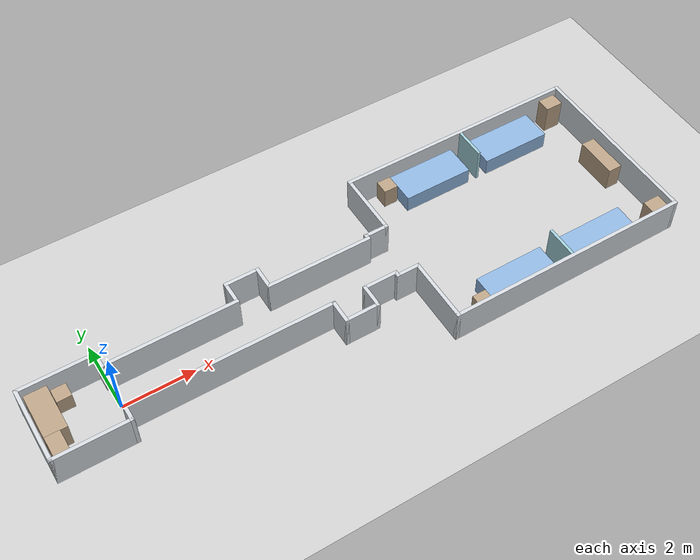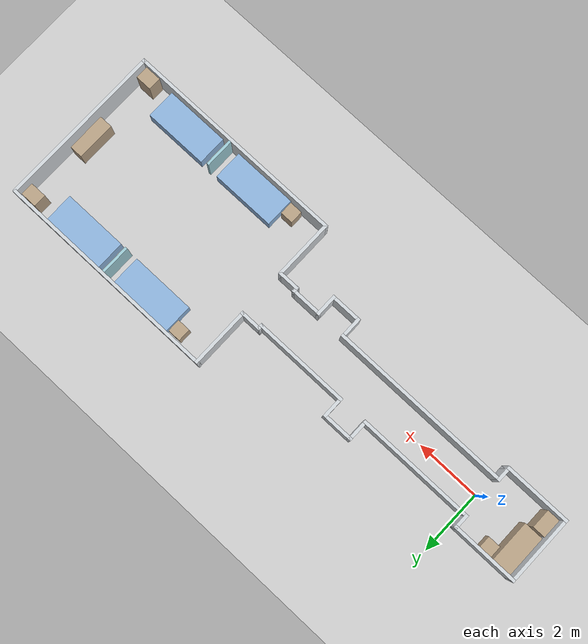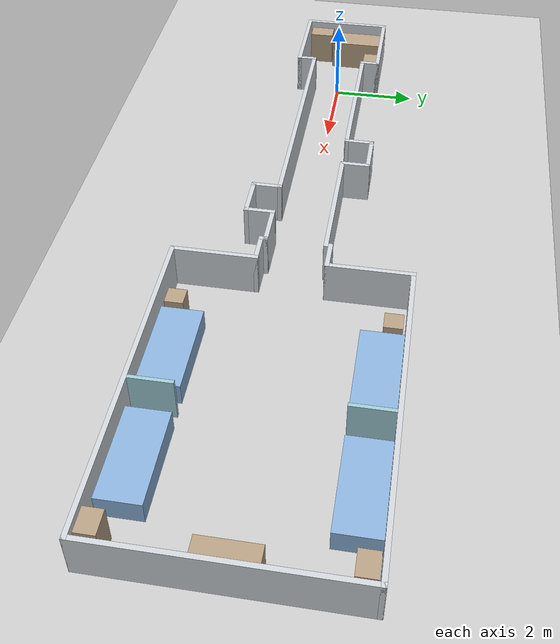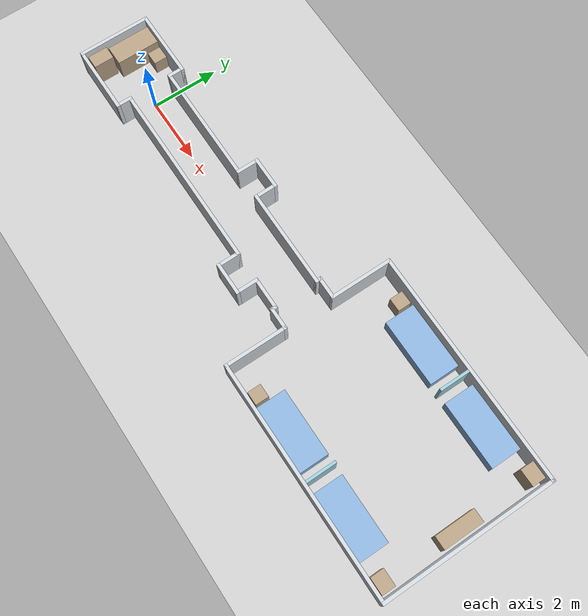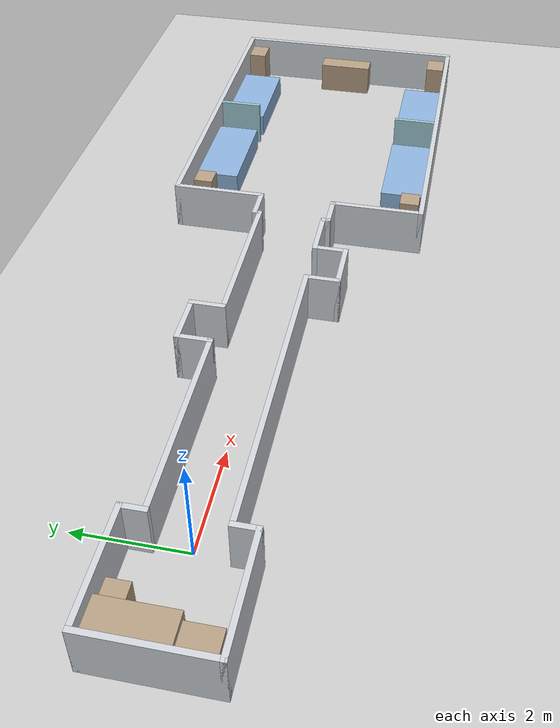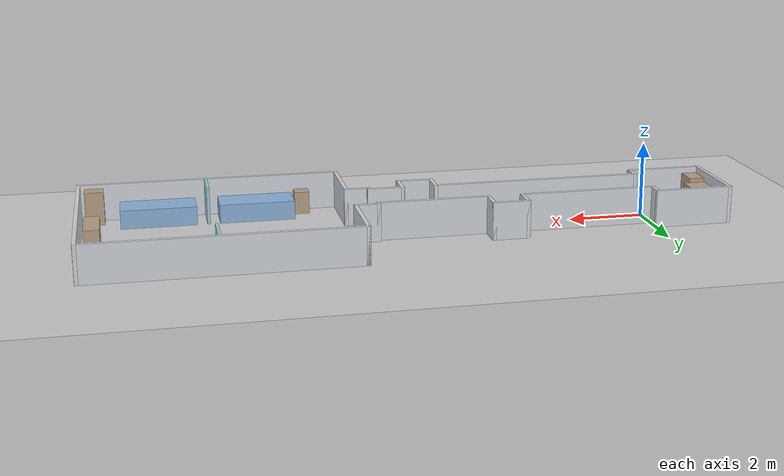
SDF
<?xml version="1.0" ?>
<sdf version="1.6">
  <world name="hospital_4bed">

    <include><uri>model://ground_plane</uri></include>
    <include><uri>model://sun</uri></include>

    <!-- VM(llvmpipe) 렌더 부하 절감: 그림자 off -->
    <scene>
      <ambient>0.55 0.55 0.55 1</ambient>
      <background>0.85 0.88 0.92 1</background>
      <shadows>false</shadows>
      <grid>false</grid>
    </scene>

    <physics type="ode">
      <max_step_size>0.002</max_step_size>
      <real_time_update_rate>500</real_time_update_rate>
    </physics>

    <!-- 영상 촬영용 기본 카메라: 복도 서측에서 병실 방향 부감 -->
    <gui fullscreen="0">
      <camera name="user_camera">
        <pose>-2.5 -6.0 6.5 0 0.62 0.95</pose>
      </camera>
    </gui>

    <!-- ==================== 간호 스테이션 (2.0 x 2.0) — 로봇 시작/복귀 지점 ==================== -->
    <model name="ns_wall_west">
      <static>true</static>
      <pose>-2.0500 0.0000 0.5000 0 0 0</pose>
      <link name="link">
        <collision name="collision">
          <geometry><box><size>0.1000 2.2000 1.0000</size></box></geometry>
        </collision>
        <visual name="visual">
          <geometry><box><size>0.1000 2.2000 1.0000</size></box></geometry>
          <material>
            <ambient>0.60 0.62 0.64 1</ambient>
            <diffuse>0.82 0.84 0.86 1</diffuse>
            <specular>0.05 0.05 0.05 1</specular>
          </material>
        </visual>
      </link>
    </model>
    <model name="ns_wall_north">
      <static>true</static>
      <pose>-1.0500 1.0500 0.5000 0 0 0</pose>
      <link name="link">
        <collision name="collision">
          <geometry><box><size>2.1000 0.1000 1.0000</size></box></geometry>
        </collision>
        <visual name="visual">
          <geometry><box><size>2.1000 0.1000 1.0000</size></box></geometry>
          <material>
            <ambient>0.60 0.62 0.64 1</ambient>
            <diffuse>0.82 0.84 0.86 1</diffuse>
            <specular>0.05 0.05 0.05 1</specular>
          </material>
        </visual>
      </link>
    </model>
    <model name="ns_wall_south">
      <static>true</static>
      <pose>-1.0500 -1.0500 0.5000 0 0 0</pose>
      <link name="link">
        <collision name="collision">
          <geometry><box><size>2.1000 0.1000 1.0000</size></box></geometry>
        </collision>
        <visual name="visual">
          <geometry><box><size>2.1000 0.1000 1.0000</size></box></geometry>
          <material>
            <ambient>0.60 0.62 0.64 1</ambient>
            <diffuse>0.82 0.84 0.86 1</diffuse>
            <specular>0.05 0.05 0.05 1</specular>
          </material>
        </visual>
      </link>
    </model>
    <model name="ns_neck_north">
      <static>true</static>
      <pose>-0.0500 0.8500 0.5000 0 0 0</pose>
      <link name="link">
        <collision name="collision">
          <geometry><box><size>0.1000 0.5000 1.0000</size></box></geometry>
        </collision>
        <visual name="visual">
          <geometry><box><size>0.1000 0.5000 1.0000</size></box></geometry>
          <material>
            <ambient>0.60 0.62 0.64 1</ambient>
            <diffuse>0.82 0.84 0.86 1</diffuse>
            <specular>0.05 0.05 0.05 1</specular>
          </material>
        </visual>
      </link>
    </model>
    <model name="ns_neck_south">
      <static>true</static>
      <pose>-0.0500 -0.8500 0.5000 0 0 0</pose>
      <link name="link">
        <collision name="collision">
          <geometry><box><size>0.1000 0.5000 1.0000</size></box></geometry>
        </collision>
        <visual name="visual">
          <geometry><box><size>0.1000 0.5000 1.0000</size></box></geometry>
          <material>
            <ambient>0.60 0.62 0.64 1</ambient>
            <diffuse>0.82 0.84 0.86 1</diffuse>
            <specular>0.05 0.05 0.05 1</specular>
          </material>
        </visual>
      </link>
    </model>
    <model name="ns_desk">
      <static>true</static>
      <pose>-1.6500 0.3500 0.3750 0 0 0</pose>
      <link name="link">
        <collision name="collision">
          <geometry><box><size>0.6000 1.3000 0.7500</size></box></geometry>
        </collision>
        <visual name="visual">
          <geometry><box><size>0.6000 1.3000 0.7500</size></box></geometry>
          <material>
            <ambient>0.45 0.38 0.30 1</ambient>
            <diffuse>0.72 0.63 0.52 1</diffuse>
            <specular>0.05 0.05 0.05 1</specular>
          </material>
        </visual>
      </link>
    </model>
    <model name="ns_chair">
      <static>true</static>
      <pose>-1.1200 0.8000 0.2500 0 0 0</pose>
      <link name="link">
        <collision name="collision">
          <geometry><box><size>0.4000 0.4000 0.5000</size></box></geometry>
        </collision>
        <visual name="visual">
          <geometry><box><size>0.4000 0.4000 0.5000</size></box></geometry>
          <material>
            <ambient>0.45 0.38 0.30 1</ambient>
            <diffuse>0.72 0.63 0.52 1</diffuse>
            <specular>0.05 0.05 0.05 1</specular>
          </material>
        </visual>
      </link>
    </model>
    <model name="ns_cabinet">
      <static>true</static>
      <pose>-1.7500 -0.6500 0.4250 0 0 0</pose>
      <link name="link">
        <collision name="collision">
          <geometry><box><size>0.4000 0.6000 0.8500</size></box></geometry>
        </collision>
        <visual name="visual">
          <geometry><box><size>0.4000 0.6000 0.8500</size></box></geometry>
          <material>
            <ambient>0.45 0.38 0.30 1</ambient>
            <diffuse>0.72 0.63 0.52 1</diffuse>
            <specular>0.05 0.05 0.05 1</specular>
          </material>
        </visual>
      </link>
    </model>
    <!-- ==================== 복도 (8.0 x 1.2) + 벽면 알코브(SLAM 특징점) + 문앞 확장 ==================== -->
    <model name="cr_wall_n_1">
      <static>true</static>
      <pose>1.8000 0.6500 0.5000 0 0 0</pose>
      <link name="link">
        <collision name="collision">
          <geometry><box><size>3.6000 0.1000 1.0000</size></box></geometry>
        </collision>
        <visual name="visual">
          <geometry><box><size>3.6000 0.1000 1.0000</size></box></geometry>
          <material>
            <ambient>0.60 0.62 0.64 1</ambient>
            <diffuse>0.82 0.84 0.86 1</diffuse>
            <specular>0.05 0.05 0.05 1</specular>
          </material>
        </visual>
      </link>
    </model>
    <model name="cr_wall_n_2">
      <static>true</static>
      <pose>5.9000 0.6500 0.5000 0 0 0</pose>
      <link name="link">
        <collision name="collision">
          <geometry><box><size>3.0000 0.1000 1.0000</size></box></geometry>
        </collision>
        <visual name="visual">
          <geometry><box><size>3.0000 0.1000 1.0000</size></box></geometry>
          <material>
            <ambient>0.60 0.62 0.64 1</ambient>
            <diffuse>0.82 0.84 0.86 1</diffuse>
            <specular>0.05 0.05 0.05 1</specular>
          </material>
        </visual>
      </link>
    </model>
    <model name="alcove_n_back">
      <static>true</static>
      <pose>4.0000 1.2500 0.5000 0 0 0</pose>
      <link name="link">
        <collision name="collision">
          <geometry><box><size>1.0000 0.1000 1.0000</size></box></geometry>
        </collision>
        <visual name="visual">
          <geometry><box><size>1.0000 0.1000 1.0000</size></box></geometry>
          <material>
            <ambient>0.60 0.62 0.64 1</ambient>
            <diffuse>0.82 0.84 0.86 1</diffuse>
            <specular>0.05 0.05 0.05 1</specular>
          </material>
        </visual>
      </link>
    </model>
    <model name="alcove_n_side_w">
      <static>true</static>
      <pose>3.5500 0.9500 0.5000 0 0 0</pose>
      <link name="link">
        <collision name="collision">
          <geometry><box><size>0.1000 0.7000 1.0000</size></box></geometry>
        </collision>
        <visual name="visual">
          <geometry><box><size>0.1000 0.7000 1.0000</size></box></geometry>
          <material>
            <ambient>0.60 0.62 0.64 1</ambient>
            <diffuse>0.82 0.84 0.86 1</diffuse>
            <specular>0.05 0.05 0.05 1</specular>
          </material>
        </visual>
      </link>
    </model>
    <model name="alcove_n_side_e">
      <static>true</static>
      <pose>4.4500 0.9500 0.5000 0 0 0</pose>
      <link name="link">
        <collision name="collision">
          <geometry><box><size>0.1000 0.7000 1.0000</size></box></geometry>
        </collision>
        <visual name="visual">
          <geometry><box><size>0.1000 0.7000 1.0000</size></box></geometry>
          <material>
            <ambient>0.60 0.62 0.64 1</ambient>
            <diffuse>0.82 0.84 0.86 1</diffuse>
            <specular>0.05 0.05 0.05 1</specular>
          </material>
        </visual>
      </link>
    </model>
    <model name="cr_step_n">
      <static>true</static>
      <pose>7.3500 0.7000 0.5000 0 0 0</pose>
      <link name="link">
        <collision name="collision">
          <geometry><box><size>0.1000 0.2000 1.0000</size></box></geometry>
        </collision>
        <visual name="visual">
          <geometry><box><size>0.1000 0.2000 1.0000</size></box></geometry>
          <material>
            <ambient>0.60 0.62 0.64 1</ambient>
            <diffuse>0.82 0.84 0.86 1</diffuse>
            <specular>0.05 0.05 0.05 1</specular>
          </material>
        </visual>
      </link>
    </model>
    <model name="cr_wall_n_3">
      <static>true</static>
      <pose>7.6500 0.7500 0.5000 0 0 0</pose>
      <link name="link">
        <collision name="collision">
          <geometry><box><size>0.7000 0.1000 1.0000</size></box></geometry>
        </collision>
        <visual name="visual">
          <geometry><box><size>0.7000 0.1000 1.0000</size></box></geometry>
          <material>
            <ambient>0.60 0.62 0.64 1</ambient>
            <diffuse>0.82 0.84 0.86 1</diffuse>
            <specular>0.05 0.05 0.05 1</specular>
          </material>
        </visual>
      </link>
    </model>
    <model name="cr_wall_s_1">
      <static>true</static>
      <pose>2.8000 -0.6500 0.5000 0 0 0</pose>
      <link name="link">
        <collision name="collision">
          <geometry><box><size>5.6000 0.1000 1.0000</size></box></geometry>
        </collision>
        <visual name="visual">
          <geometry><box><size>5.6000 0.1000 1.0000</size></box></geometry>
          <material>
            <ambient>0.60 0.62 0.64 1</ambient>
            <diffuse>0.82 0.84 0.86 1</diffuse>
            <specular>0.05 0.05 0.05 1</specular>
          </material>
        </visual>
      </link>
    </model>
    <model name="cr_wall_s_2">
      <static>true</static>
      <pose>6.9000 -0.6500 0.5000 0 0 0</pose>
      <link name="link">
        <collision name="collision">
          <geometry><box><size>1.0000 0.1000 1.0000</size></box></geometry>
        </collision>
        <visual name="visual">
          <geometry><box><size>1.0000 0.1000 1.0000</size></box></geometry>
          <material>
            <ambient>0.60 0.62 0.64 1</ambient>
            <diffuse>0.82 0.84 0.86 1</diffuse>
            <specular>0.05 0.05 0.05 1</specular>
          </material>
        </visual>
      </link>
    </model>
    <model name="alcove_s_back">
      <static>true</static>
      <pose>6.0000 -1.2500 0.5000 0 0 0</pose>
      <link name="link">
        <collision name="collision">
          <geometry><box><size>1.0000 0.1000 1.0000</size></box></geometry>
        </collision>
        <visual name="visual">
          <geometry><box><size>1.0000 0.1000 1.0000</size></box></geometry>
          <material>
            <ambient>0.60 0.62 0.64 1</ambient>
            <diffuse>0.82 0.84 0.86 1</diffuse>
            <specular>0.05 0.05 0.05 1</specular>
          </material>
        </visual>
      </link>
    </model>
    <model name="alcove_s_side_w">
      <static>true</static>
      <pose>5.5500 -0.9500 0.5000 0 0 0</pose>
      <link name="link">
        <collision name="collision">
          <geometry><box><size>0.1000 0.7000 1.0000</size></box></geometry>
        </collision>
        <visual name="visual">
          <geometry><box><size>0.1000 0.7000 1.0000</size></box></geometry>
          <material>
            <ambient>0.60 0.62 0.64 1</ambient>
            <diffuse>0.82 0.84 0.86 1</diffuse>
            <specular>0.05 0.05 0.05 1</specular>
          </material>
        </visual>
      </link>
    </model>
    <model name="alcove_s_side_e">
      <static>true</static>
      <pose>6.4500 -0.9500 0.5000 0 0 0</pose>
      <link name="link">
        <collision name="collision">
          <geometry><box><size>0.1000 0.7000 1.0000</size></box></geometry>
        </collision>
        <visual name="visual">
          <geometry><box><size>0.1000 0.7000 1.0000</size></box></geometry>
          <material>
            <ambient>0.60 0.62 0.64 1</ambient>
            <diffuse>0.82 0.84 0.86 1</diffuse>
            <specular>0.05 0.05 0.05 1</specular>
          </material>
        </visual>
      </link>
    </model>
    <model name="cr_step_s">
      <static>true</static>
      <pose>7.3500 -0.7000 0.5000 0 0 0</pose>
      <link name="link">
        <collision name="collision">
          <geometry><box><size>0.1000 0.2000 1.0000</size></box></geometry>
        </collision>
        <visual name="visual">
          <geometry><box><size>0.1000 0.2000 1.0000</size></box></geometry>
          <material>
            <ambient>0.60 0.62 0.64 1</ambient>
            <diffuse>0.82 0.84 0.86 1</diffuse>
            <specular>0.05 0.05 0.05 1</specular>
          </material>
        </visual>
      </link>
    </model>
    <model name="cr_wall_s_3">
      <static>true</static>
      <pose>7.6500 -0.7500 0.5000 0 0 0</pose>
      <link name="link">
        <collision name="collision">
          <geometry><box><size>0.7000 0.1000 1.0000</size></box></geometry>
        </collision>
        <visual name="visual">
          <geometry><box><size>0.7000 0.1000 1.0000</size></box></geometry>
          <material>
            <ambient>0.60 0.62 0.64 1</ambient>
            <diffuse>0.82 0.84 0.86 1</diffuse>
            <specular>0.05 0.05 0.05 1</specular>
          </material>
        </visual>
      </link>
    </model>
    <!-- ==================== 병실 벽 (6.8 x 5.0), 출입구 폭 1.40 ==================== -->
    <model name="rm_wall_w_n">
      <static>true</static>
      <pose>7.9500 1.6500 0.5000 0 0 0</pose>
      <link name="link">
        <collision name="collision">
          <geometry><box><size>0.1000 1.9000 1.0000</size></box></geometry>
        </collision>
        <visual name="visual">
          <geometry><box><size>0.1000 1.9000 1.0000</size></box></geometry>
          <material>
            <ambient>0.60 0.62 0.64 1</ambient>
            <diffuse>0.82 0.84 0.86 1</diffuse>
            <specular>0.05 0.05 0.05 1</specular>
          </material>
        </visual>
      </link>
    </model>
    <model name="rm_wall_w_s">
      <static>true</static>
      <pose>7.9500 -1.6500 0.5000 0 0 0</pose>
      <link name="link">
        <collision name="collision">
          <geometry><box><size>0.1000 1.9000 1.0000</size></box></geometry>
        </collision>
        <visual name="visual">
          <geometry><box><size>0.1000 1.9000 1.0000</size></box></geometry>
          <material>
            <ambient>0.60 0.62 0.64 1</ambient>
            <diffuse>0.82 0.84 0.86 1</diffuse>
            <specular>0.05 0.05 0.05 1</specular>
          </material>
        </visual>
      </link>
    </model>
    <model name="rm_wall_east">
      <static>true</static>
      <pose>14.8500 0.0000 0.5000 0 0 0</pose>
      <link name="link">
        <collision name="collision">
          <geometry><box><size>0.1000 5.2000 1.0000</size></box></geometry>
        </collision>
        <visual name="visual">
          <geometry><box><size>0.1000 5.2000 1.0000</size></box></geometry>
          <material>
            <ambient>0.60 0.62 0.64 1</ambient>
            <diffuse>0.82 0.84 0.86 1</diffuse>
            <specular>0.05 0.05 0.05 1</specular>
          </material>
        </visual>
      </link>
    </model>
    <model name="rm_wall_north">
      <static>true</static>
      <pose>11.4000 2.5500 0.5000 0 0 0</pose>
      <link name="link">
        <collision name="collision">
          <geometry><box><size>7.0000 0.1000 1.0000</size></box></geometry>
        </collision>
        <visual name="visual">
          <geometry><box><size>7.0000 0.1000 1.0000</size></box></geometry>
          <material>
            <ambient>0.60 0.62 0.64 1</ambient>
            <diffuse>0.82 0.84 0.86 1</diffuse>
            <specular>0.05 0.05 0.05 1</specular>
          </material>
        </visual>
      </link>
    </model>
    <model name="rm_wall_south">
      <static>true</static>
      <pose>11.4000 -2.5500 0.5000 0 0 0</pose>
      <link name="link">
        <collision name="collision">
          <geometry><box><size>7.0000 0.1000 1.0000</size></box></geometry>
        </collision>
        <visual name="visual">
          <geometry><box><size>7.0000 0.1000 1.0000</size></box></geometry>
          <material>
            <ambient>0.60 0.62 0.64 1</ambient>
            <diffuse>0.82 0.84 0.86 1</diffuse>
            <specular>0.05 0.05 0.05 1</specular>
          </material>
        </visual>
      </link>
    </model>
    <!-- ==================== 침상 4개 (2.0 x 0.9 x 0.5) ==================== -->
    <model name="bed_1">
      <static>true</static>
      <pose>10.2000 2.0500 0.2500 0 0 0</pose>
      <link name="link">
        <collision name="collision">
          <geometry><box><size>2.0000 0.9000 0.5000</size></box></geometry>
        </collision>
        <visual name="visual">
          <geometry><box><size>2.0000 0.9000 0.5000</size></box></geometry>
          <material>
            <ambient>0.30 0.42 0.58 1</ambient>
            <diffuse>0.55 0.70 0.86 1</diffuse>
            <specular>0.05 0.05 0.05 1</specular>
          </material>
        </visual>
      </link>
    </model>
    <model name="bed_2">
      <static>true</static>
      <pose>12.8000 2.0500 0.2500 0 0 0</pose>
      <link name="link">
        <collision name="collision">
          <geometry><box><size>2.0000 0.9000 0.5000</size></box></geometry>
        </collision>
        <visual name="visual">
          <geometry><box><size>2.0000 0.9000 0.5000</size></box></geometry>
          <material>
            <ambient>0.30 0.42 0.58 1</ambient>
            <diffuse>0.55 0.70 0.86 1</diffuse>
            <specular>0.05 0.05 0.05 1</specular>
          </material>
        </visual>
      </link>
    </model>
    <model name="bed_3">
      <static>true</static>
      <pose>10.2000 -2.0500 0.2500 0 0 0</pose>
      <link name="link">
        <collision name="collision">
          <geometry><box><size>2.0000 0.9000 0.5000</size></box></geometry>
        </collision>
        <visual name="visual">
          <geometry><box><size>2.0000 0.9000 0.5000</size></box></geometry>
          <material>
            <ambient>0.30 0.42 0.58 1</ambient>
            <diffuse>0.55 0.70 0.86 1</diffuse>
            <specular>0.05 0.05 0.05 1</specular>
          </material>
        </visual>
      </link>
    </model>
    <model name="bed_4">
      <static>true</static>
      <pose>12.8000 -2.0500 0.2500 0 0 0</pose>
      <link name="link">
        <collision name="collision">
          <geometry><box><size>2.0000 0.9000 0.5000</size></box></geometry>
        </collision>
        <visual name="visual">
          <geometry><box><size>2.0000 0.9000 0.5000</size></box></geometry>
          <material>
            <ambient>0.30 0.42 0.58 1</ambient>
            <diffuse>0.55 0.70 0.86 1</diffuse>
            <specular>0.05 0.05 0.05 1</specular>
          </material>
        </visual>
      </link>
    </model>
    <!-- ==================== 병실 가구 / 커튼 파티션 ==================== -->
    <model name="curtain_n">
      <static>true</static>
      <pose>11.5000 2.0500 0.5000 0 0 0</pose>
      <link name="link">
        <collision name="collision">
          <geometry><box><size>0.0800 0.9000 1.0000</size></box></geometry>
        </collision>
        <visual name="visual">
          <geometry><box><size>0.0800 0.9000 1.0000</size></box></geometry>
          <material>
            <ambient>0.35 0.50 0.55 1</ambient>
            <diffuse>0.62 0.80 0.84 1</diffuse>
            <specular>0.05 0.05 0.05 1</specular>
          </material>
        </visual>
      </link>
    </model>
    <model name="curtain_s">
      <static>true</static>
      <pose>11.5000 -2.0500 0.5000 0 0 0</pose>
      <link name="link">
        <collision name="collision">
          <geometry><box><size>0.0800 0.9000 1.0000</size></box></geometry>
        </collision>
        <visual name="visual">
          <geometry><box><size>0.0800 0.9000 1.0000</size></box></geometry>
          <material>
            <ambient>0.35 0.50 0.55 1</ambient>
            <diffuse>0.62 0.80 0.84 1</diffuse>
            <specular>0.05 0.05 0.05 1</specular>
          </material>
        </visual>
      </link>
    </model>
    <model name="nightstand_1">
      <static>true</static>
      <pose>8.9500 2.2500 0.3000 0 0 0</pose>
      <link name="link">
        <collision name="collision">
          <geometry><box><size>0.4000 0.4000 0.6000</size></box></geometry>
        </collision>
        <visual name="visual">
          <geometry><box><size>0.4000 0.4000 0.6000</size></box></geometry>
          <material>
            <ambient>0.45 0.38 0.30 1</ambient>
            <diffuse>0.72 0.63 0.52 1</diffuse>
            <specular>0.05 0.05 0.05 1</specular>
          </material>
        </visual>
      </link>
    </model>
    <model name="nightstand_2">
      <static>true</static>
      <pose>8.9500 -2.2500 0.3000 0 0 0</pose>
      <link name="link">
        <collision name="collision">
          <geometry><box><size>0.4000 0.4000 0.6000</size></box></geometry>
        </collision>
        <visual name="visual">
          <geometry><box><size>0.4000 0.4000 0.6000</size></box></geometry>
          <material>
            <ambient>0.45 0.38 0.30 1</ambient>
            <diffuse>0.72 0.63 0.52 1</diffuse>
            <specular>0.05 0.05 0.05 1</specular>
          </material>
        </visual>
      </link>
    </model>
    <model name="sink">
      <static>true</static>
      <pose>14.4500 2.2800 0.4250 0 0 0</pose>
      <link name="link">
        <collision name="collision">
          <geometry><box><size>0.5000 0.4000 0.8500</size></box></geometry>
        </collision>
        <visual name="visual">
          <geometry><box><size>0.5000 0.4000 0.8500</size></box></geometry>
          <material>
            <ambient>0.45 0.38 0.30 1</ambient>
            <diffuse>0.72 0.63 0.52 1</diffuse>
            <specular>0.05 0.05 0.05 1</specular>
          </material>
        </visual>
      </link>
    </model>
    <model name="cabinet_se">
      <static>true</static>
      <pose>14.4500 -2.2800 0.4500 0 0 0</pose>
      <link name="link">
        <collision name="collision">
          <geometry><box><size>0.5000 0.4000 0.9000</size></box></geometry>
        </collision>
        <visual name="visual">
          <geometry><box><size>0.5000 0.4000 0.9000</size></box></geometry>
          <material>
            <ambient>0.45 0.38 0.30 1</ambient>
            <diffuse>0.72 0.63 0.52 1</diffuse>
            <specular>0.05 0.05 0.05 1</specular>
          </material>
        </visual>
      </link>
    </model>
    <model name="cabinet_e">
      <static>true</static>
      <pose>14.5000 0.0000 0.3500 0 0 0</pose>
      <link name="link">
        <collision name="collision">
          <geometry><box><size>0.4000 1.2000 0.7000</size></box></geometry>
        </collision>
        <visual name="visual">
          <geometry><box><size>0.4000 1.2000 0.7000</size></box></geometry>
          <material>
            <ambient>0.45 0.38 0.30 1</ambient>
            <diffuse>0.72 0.63 0.52 1</diffuse>
            <specular>0.05 0.05 0.05 1</specular>
          </material>
        </visual>
      </link>
    </model>

    <!-- 촬영용 가상 카메라 (8/5 추가)                                     -->
    <!--  목적: 화면 녹화 없이 제출용 영상 소재를 확보한다.                  -->
    <!--  [왜 화면 녹화가 아닌가]                                          -->
    <!--    VirtualBox 에 GPU 가속이 없어 gzclient 3D 렌더링 + 데스크톱     -->
    <!--    합성 + 인코딩이 CPU 를 3중으로 먹는다. 8/4 실측에서 화면 관련   -->
    <!--    프로세스 합계가 136% (rviz 71 + gnome-shell 47 + Xorg 18) 로   -->
    <!--    시뮬레이터(29%)보다 컸고, RTF 가 0.59 까지 떨어졌다.            -->
    <!--  [카메라 센서 방식의 이점]                                        -->
    <!--    프레임을 '시뮬레이션 시간' 기준으로 저장하므로 RTF 가 떨어져도  -->
    <!--    프레임은 균일하게 전부 남는다. 나중에 정상 fps 로 이어붙이면    -->
    <!--    부드러운 영상이 된다.                                          -->
    <!--      RTF 저하 → 후보정으로 회복 가능                              -->
    <!--      FPS 저하 → 회복 불가                                         -->
    <!--    즉 회복 가능한 것을 희생해 회복 불가능한 것을 지킨다.           -->
    <!--  [사용법]                                                        -->
    <!--    1) 프레임 저장 경로를 미리 만든다                              -->
    <!--         mkdir -p /tmp/demo_cam                                    -->
    <!--    2) headless 로 주행 (gui:=false). gzclient·RViz·녹화 전부 끔   -->
    <!--    3) 주행이 끝나면 프레임을 영상으로 합친다                       -->
    <!--         ffmpeg -framerate 20 -pattern_type glob \                 -->
    <!--           -i '/tmp/demo_cam/*.jpg' -c:v libx264 -pix_fmt yuv420p \-->
    <!--           -vf scale=1280:720 ~/demo_overview.mp4                  -->
    <!--  ⚠️ 촬영하지 않을 때는 이 model 블록 전체를 주석 처리할 것.        -->
    <!--    카메라 센서는 렌더링 비용이 있어 SLAM·튜닝 중에는 낭비다.       -->
    <!--    RTF 가 크게 떨어지면 update_rate 나 해상도를 먼저 낮춘다.       -->
    <model name="cine_cam_overview">
      <static>true</static>
      <pose>6.2000 -6.0000 14.0000 0 1.1659 1.5708</pose>
      <link name="link">
        <!-- 시각 요소 없음: 화면에 카메라 몸체가 안 찍히게 -->
        <sensor name="cam_overview" type="camera">
          <camera>
            <!-- 74.5° — 기본 60° 로는 17m 전경이 다 안 들어온다 -->
            <horizontal_fov>1.3000</horizontal_fov>
            <image>
              <width>1280</width>
              <height>720</height>
              <format>R8G8B8</format>
            </image>
            <clip>
              <near>0.1000</near>
              <far>60.0000</far>
            </clip>
            <save enabled="true">
              <path>/tmp/demo_cam</path>
            </save>
          </camera>
          <always_on>1</always_on>
          <update_rate>20</update_rate>
          <visualize>false</visualize>
        </sensor>
      </link>
    </model>

    <model name="cine_cam_corridor">
      <static>true</static>
      <pose>7.6000 0.0000 0.8500 0 0.0843 3.1416</pose>
      <link name="link">
        <sensor name="cam_corridor" type="camera">
          <camera>
            <horizontal_fov>1.3000</horizontal_fov>
            <image>
              <width>1280</width>
              <height>720</height>
              <format>R8G8B8</format>
            </image>
            <clip>
              <near>0.1000</near>
              <far>30.0000</far>
            </clip>
            <save enabled="true">
              <path>/tmp/demo_cam_corridor</path>
            </save>
          </camera>
          <always_on>1</always_on>
          <update_rate>20</update_rate>
          <visualize>false</visualize>
        </sensor>
      </link>
    </model>

    <model name="cine_cam_room">
      <static>true</static>
      <pose>14.0000 -2.0000 2.2000 0 0.3910 2.4330</pose>
      <link name="link">
        <sensor name="cam_room" type="camera">
          <camera>
            <horizontal_fov>1.3000</horizontal_fov>
            <image>
              <width>1280</width>
              <height>720</height>
              <format>R8G8B8</format>
            </image>
            <clip>
              <near>0.1000</near>
              <far>40.0000</far>
            </clip>
            <save enabled="true">
              <path>/tmp/demo_cam_room</path>
            </save>
          </camera>
          <always_on>1</always_on>
          <update_rate>20</update_rate>
          <visualize>false</visualize>
        </sensor>
      </link>
    </model>

  </world>
</sdf>
